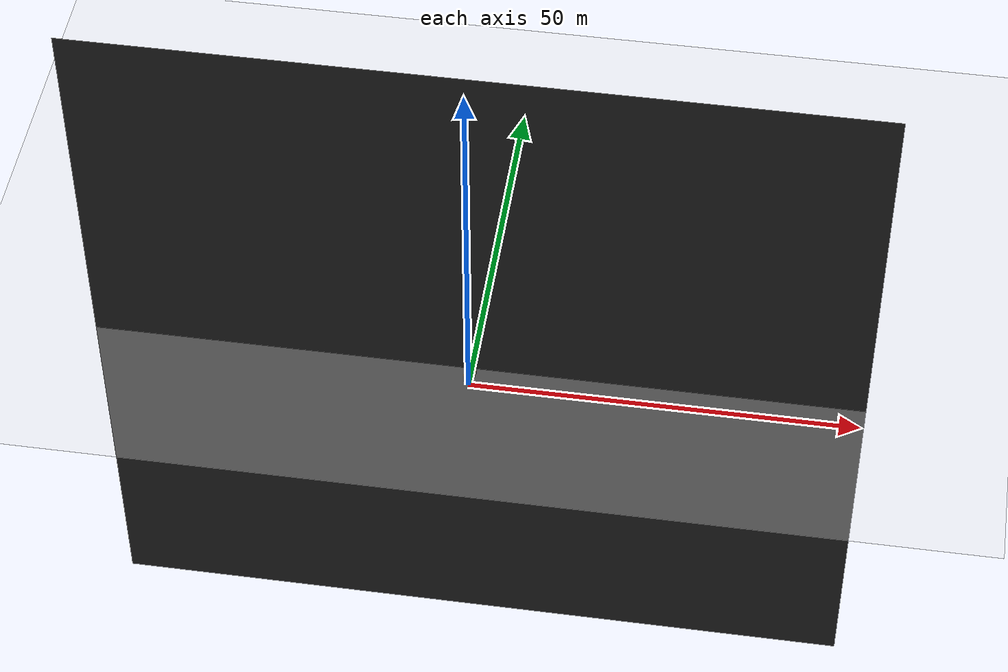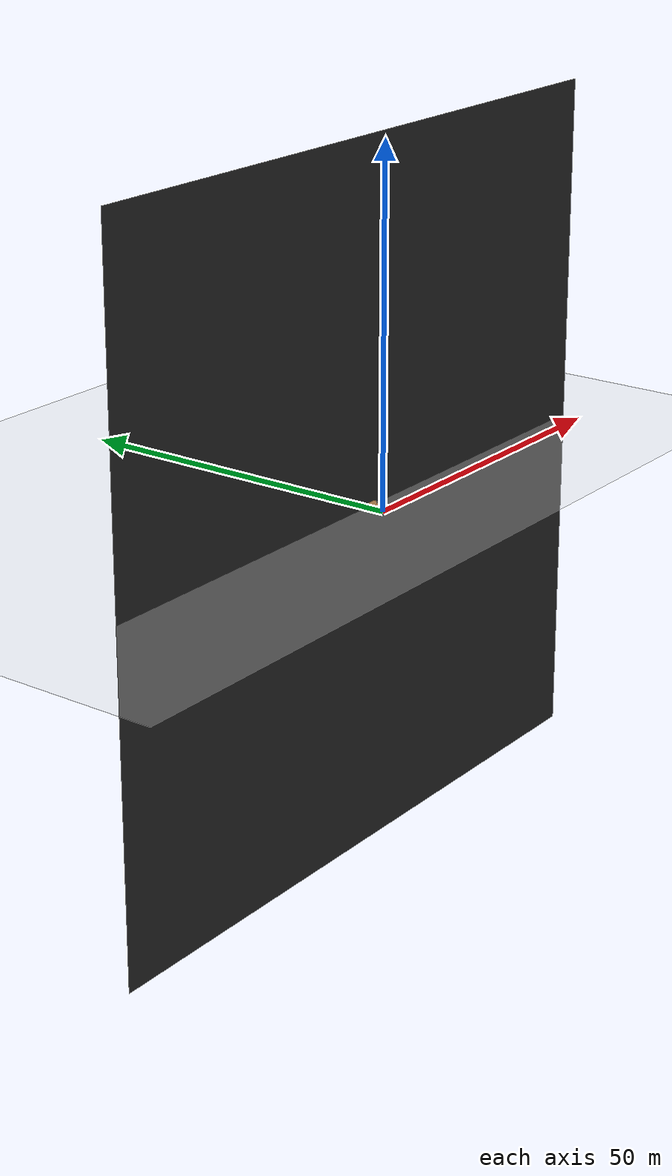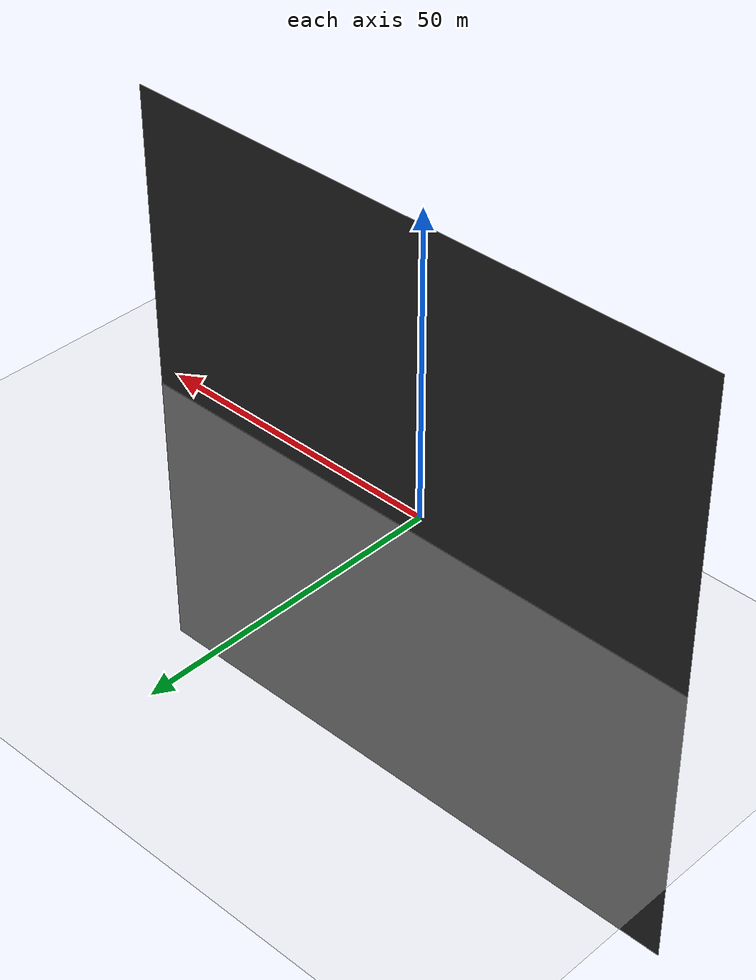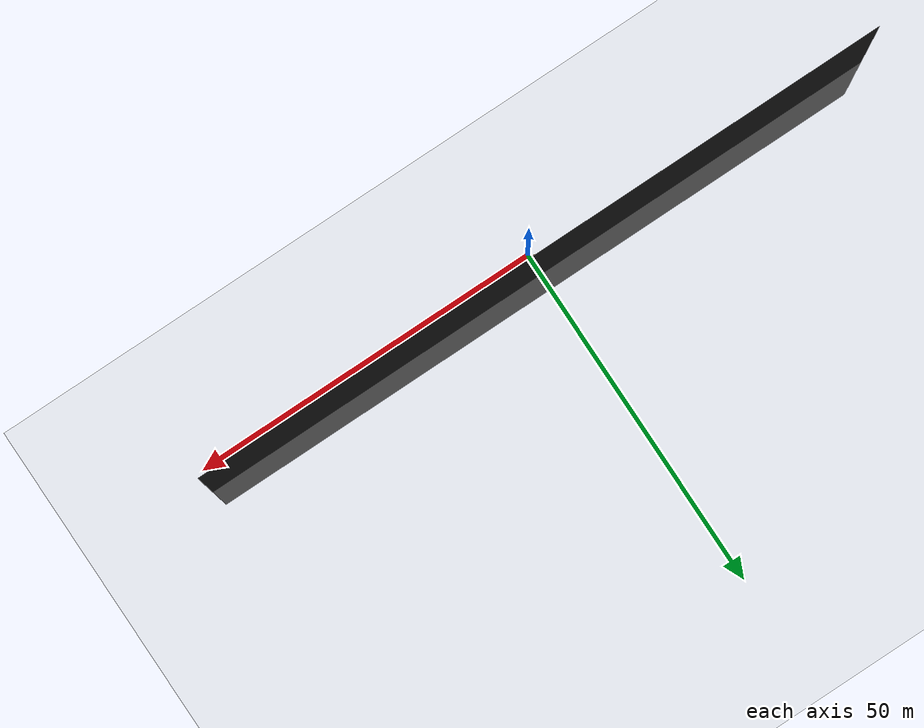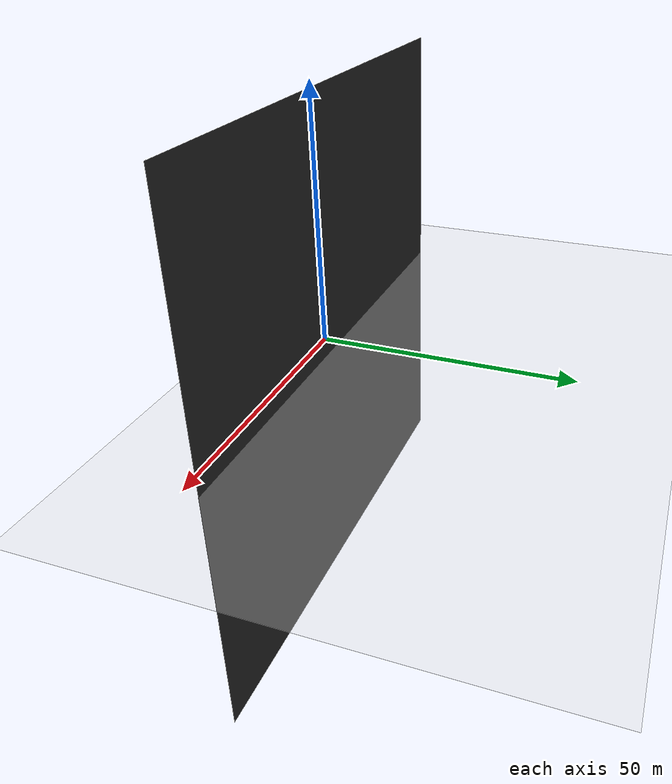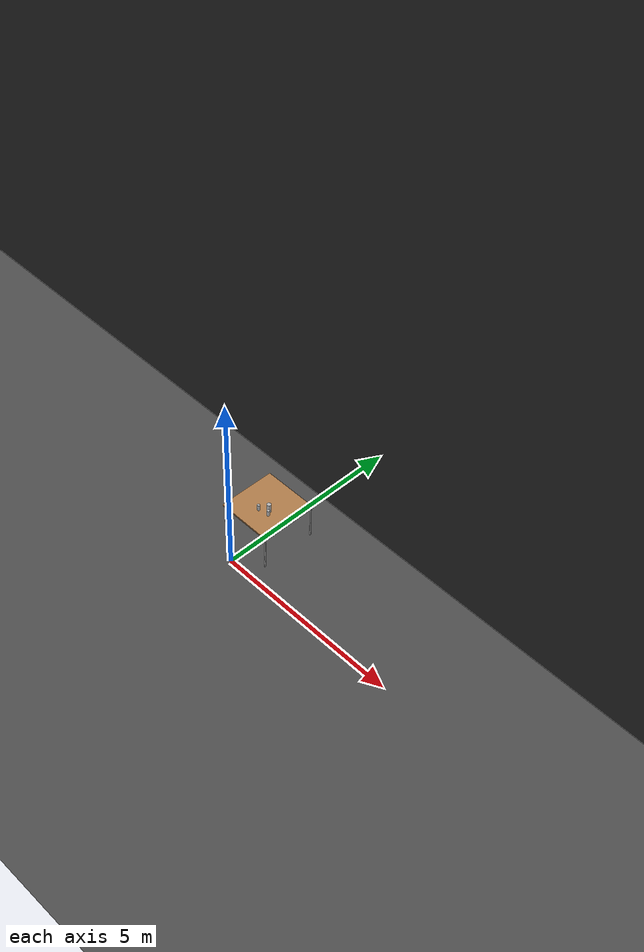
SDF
<sdf version="1.6">
 <world name="default">
  <scene><shadows>0</shadows><background>1.0 1.0 1.0 1.0</background></scene>
  <light name="sun" type="directional">
   <pose>0 -3 10 0 -0 0</pose>
   <diffuse>0.8 0.8 0.8 1</diffuse>
   <specular>0.1 0.1 0.1 1</specular>
   <attenuation>
    <range>1000</range>
    <constant>0.9</constant>
    <linear>0.01</linear>
    <quadratic>0.001</quadratic>
   </attenuation>
   <direction>-0.5 0.5 -1</direction>
  </light>
  <model name="ground_plane">
   <static>1</static>
   <link name="link">
    <collision name="collision">
     <geometry><plane><normal>0 0 1</normal><size>100 100</size></plane></geometry>
     <surface><friction><ode><mu>100</mu><mu2>50</mu2></ode></friction></surface>
    </collision>
    <visual name="visual">
     <cast_shadows>0</cast_shadows>
     <geometry><plane><normal>0 0 1</normal><size>100 100</size></plane></geometry>
     <material>
      <script><uri>file://media/materials/scripts/gazebo.material</uri><name>Gazebo/White</name></script>
     </material>
    </visual>
   </link>
  </model>
  <model name="box">
   <pose>0.5 3 0 0 -0 0</pose>
   <link name="link">
    <visual name="visual">
     <geometry><box><size>100 0.001 100</size></box></geometry>
     <material>
      <script><uri>file://media/materials/scripts/gazebo.material</uri><name>Gazebo/Black</name></script>
     </material>
    </visual>
   </link>
  </model>
  <model name="table">
   <static>false</static>
   <link name="link">
    <collision name="surface">
     <pose>0 1.2 1 0 0 1.57</pose>
     <geometry><box><size>1.5 1.5 0.03</size></box></geometry>
     <surface><friction><ode><mu>0.6</mu><mu2>0.6</mu2></ode></friction></surface>
    </collision>
    <visual name="visual1">
     <pose>0 1.2 1 0 0 1.57</pose>
     <geometry><box><size>1.5 1.5 0.04</size></box></geometry>
     <material>
      <script><uri>file://media/materials/scripts/gazebo.material</uri><name>Gazebo/Wood</name></script>
     </material>
    </visual>
    <collision name="front_left_leg">
     <pose>0.68 1.93 0.5 0 0 0</pose>
     <geometry><cylinder><radius>0.02</radius><length>1.0</length></cylinder></geometry>
    </collision>
    <visual name="front_left_leg">
     <pose>0.68 1.93 0.5 0 0 0</pose>
     <geometry><cylinder><radius>0.02</radius><length>1.0</length></cylinder></geometry>
     <material>
      <script><uri>file://media/materials/scripts/gazebo.material</uri><name>Gazebo/Grey</name></script>
     </material>
    </visual>
    <collision name="front_right_leg">
     <pose>0.68 0.47 0.5 0 0 0</pose>
     <geometry><cylinder><radius>0.02</radius><length>1.0</length></cylinder></geometry>
    </collision>
    <visual name="front_right_leg">
     <pose>0.68 0.47 0.5 0 0 0</pose>
     <geometry><cylinder><radius>0.02</radius><length>1.0</length></cylinder></geometry>
     <material>
      <script><uri>file://media/materials/scripts/gazebo.material</uri><name>GazeboGrey</name></script>
     </material>
    </visual>
    <collision name="back_right_leg">
     <pose>-0.68 0.47 0.5 0 0 0</pose>
     <geometry><cylinder><radius>0.02</radius><length>1.0</length></cylinder></geometry>
    </collision>
    <visual name="back_right_leg">
     <pose>-0.68 0.47 0.5 0 0 0</pose>
     <geometry><cylinder><radius>0.02</radius><length>1.0</length></cylinder></geometry>
     <material>
      <script><uri>file://media/materials/scripts/gazebo.material</uri><name>Gazebo/Grey</name></script>
     </material>
    </visual>
    <collision name="back_left_leg">
     <pose>-0.68 1.93 0.5 0 0 0</pose>
     <geometry><cylinder><radius>0.02</radius><length>1.0</length></cylinder></geometry>
    </collision>
    <visual name="back_left_leg">
     <pose>-0.68 1.93 0.5 0 0 0</pose>
     <geometry><cylinder><radius>0.02</radius><length>1.0</length></cylinder></geometry>
     <material>
      <script><uri>file://media/materials/scripts/gazebo.material</uri><name>Gazebo/Grey</name></script>
     </material>
    </visual>
   </link>
  </model>
  <model name="beer">
   <link name="link">
    <pose>0.145 1.1 1.14 0 0 0</pose>
    <inertial>
     <mass>0.390</mass>
     <inertia><ixx>0.00058</ixx><ixy>0</ixy><ixz>0</ixz><iyy>0.00058</iyy><iyz>0</iyz><izz>0.00019</izz></inertia>
    </inertial>
    <collision name="collision">
     <geometry><cylinder><radius>0.055000</radius><length>0.230000</length></cylinder></geometry>
    </collision>
    <visual name="visual">
     <geometry><cylinder><radius>0.055000</radius><length>0.230000</length></cylinder></geometry>
     <material>
      <script>
       <uri>model://beer/materials/scripts</uri>
       <uri>model://beer/materials/textures</uri>
       <name>Beer/Diffuse</name>
      </script>
     </material>
    </visual>
   </link>
  </model>
  <model name="Glass_textured1">
   <link name="link">
    <pose>-0.05 0.95 1.108 0 0 0</pose>
    <inertial>
     <mass>0.390</mass>
     <inertia><ixx>0.00058</ixx><ixy>0</ixy><ixz>0</ixz><iyy>0.00058</iyy><iyz>0</iyz><izz>0.00019</izz></inertia>
    </inertial>
    <collision name="collision">
     <geometry><cylinder><radius>0.035000</radius><length>0.155000</length></cylinder></geometry>
    </collision>
    <visual name="visual">
     <geometry><cylinder><radius>0.035000</radius><length>0.160000</length></cylinder></geometry>
     <material>
      <script>
       <uri>model://Image_text3/materials/scripts</uri>
       <uri>model://Image_text3/materials/textures</uri>
       <name>Image_text/Diffuse</name>
      </script>
     </material>
    </visual>
   </link>
  </model>
  <model name="Glass_textured2">
   <link name="link">
    <pose>0.23 1.0 1.108 0 0 0</pose>
    <inertial>
     <mass>0.390</mass>
     <inertia><ixx>0.00058</ixx><ixy>0</ixy><ixz>0</ixz><iyy>0.00058</iyy><iyz>0</iyz><izz>0.00019</izz></inertia>
    </inertial>
    <collision name="collision">
     <geometry><cylinder><radius>0.035000</radius><length>0.155000</length></cylinder></geometry>
    </collision>
    <visual name="visual">
     <geometry><cylinder><radius>0.035000</radius><length>0.160000</length></cylinder></geometry>
     <material>
      <script>
       <uri>model://Image_text4/materials/scripts</uri>
       <uri>model://Image_text4/materials/textures</uri>
       <name>Image_text4/Diffuse</name>
      </script>
     </material>
    </visual>
   </link>
  </model>
 </world>
</sdf>
